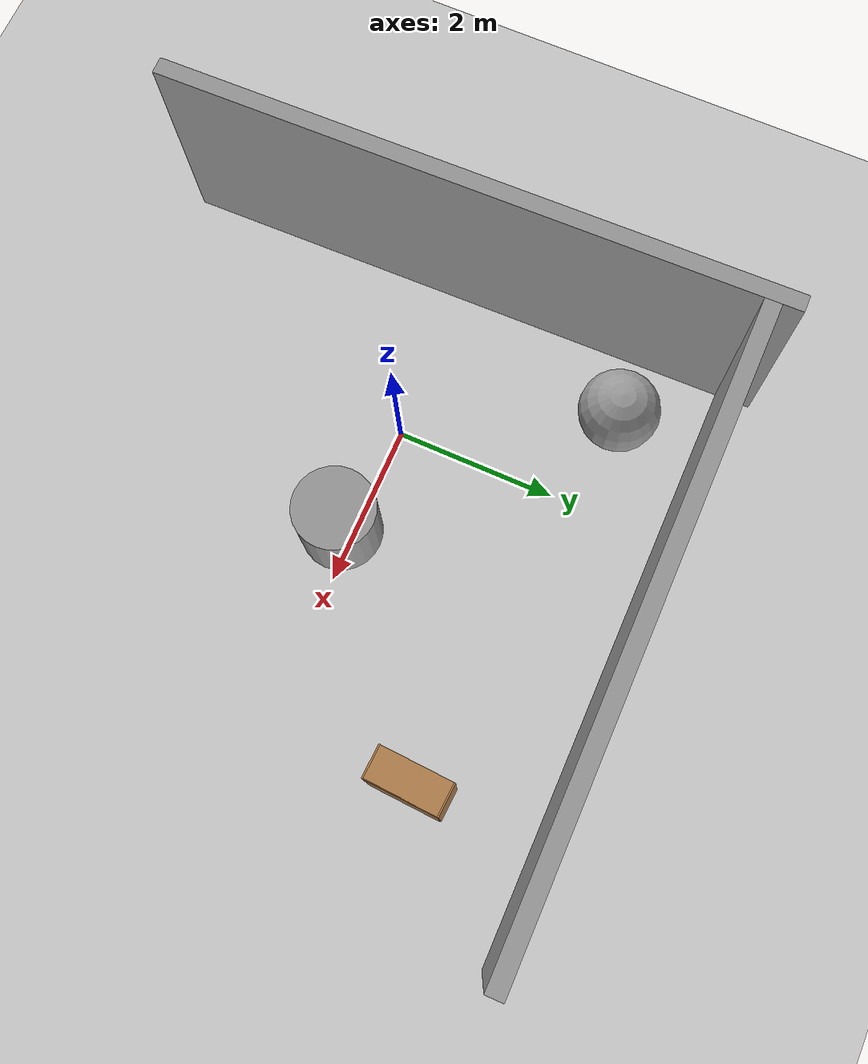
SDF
<sdf version="1.4">
 <world name="default">
  <light name="sun" type="directional">
   <pose>0 0 10 0 -0 0</pose>
   <diffuse>0.8 0.8 0.8 1</diffuse>
   <specular>0.2 0.2 0.2 1</specular>
   <attenuation>
    <range>1000</range>
    <constant>0.9</constant>
    <linear>0.01</linear>
    <quadratic>0.001</quadratic>
   </attenuation>
   <direction>-0.5 0.1 -0.9</direction>
  </light>
  <model name="ground_plane">
   <static>1</static>
   <link name="link">
    <collision name="collision">
     <geometry><plane><normal>0 0 1</normal><size>100 100</size></plane></geometry>
     <surface><friction><ode><mu>100</mu><mu2>50</mu2></ode></friction></surface>
    </collision>
    <visual name="visual">
     <cast_shadows>0</cast_shadows>
     <geometry><plane><normal>0 0 1</normal><size>100 100</size></plane></geometry>
     <material>
      <script><uri>file://media/materials/scripts/gazebo.material</uri><name>Gazebo/Grey</name></script>
     </material>
    </visual>
    <velocity_decay><linear>0</linear><angular>0</angular></velocity_decay>
   </link>
  </model>
  <physics type="ode">
   <max_step_size>0.001</max_step_size>
   <real_time_factor>1</real_time_factor>
   <real_time_update_rate>1000</real_time_update_rate>
   <gravity>0 0 -9.8</gravity>
  </physics>
  <scene><ambient>0.4 0.4 0.4 1</ambient><background>0.7 0.7 0.7 1</background><shadows>1</shadows></scene>
  <spherical_coordinates>
   <surface_model>EARTH_WGS84</surface_model>
   <latitude_deg>0</latitude_deg>
   <longitude_deg>0</longitude_deg>
   <elevation>0</elevation>
   <heading_deg>0</heading_deg>
  </spherical_coordinates>
  <model name="grey_wall">
   <static>1</static>
   <link name="link">
    <pose>0 0 1.4 0 -0 0</pose>
    <collision name="collision"><geometry><box><size>7.5 0.2 2.8</size></box></geometry></collision>
    <visual name="visual">
     <cast_shadows>0</cast_shadows>
     <geometry><box><size>7.5 0.2 2.8</size></box></geometry>
     <material>
      <script>
       <uri>model://grey_wall/materials/scripts</uri>
       <uri>model://grey_wall/materials/textures</uri>
       <name>vrc/grey_wall</name>
      </script>
     </material>
    </visual>
    <velocity_decay><linear>0</linear><angular>0</angular></velocity_decay>
   </link>
   <pose>1.60773 3.48384 0 0 -0 0</pose>
  </model>
  <model name="grey_wall_0">
   <static>1</static>
   <link name="link">
    <pose>0 0 1.4 0 -0 0</pose>
    <collision name="collision"><geometry><box><size>7.5 0.2 2.8</size></box></geometry></collision>
    <visual name="visual">
     <cast_shadows>0</cast_shadows>
     <geometry><box><size>7.5 0.2 2.8</size></box></geometry>
     <material>
      <script>
       <uri>model://grey_wall/materials/scripts</uri>
       <uri>model://grey_wall/materials/textures</uri>
       <name>vrc/grey_wall</name>
      </script>
     </material>
    </visual>
    <velocity_decay><linear>0</linear><angular>0</angular></velocity_decay>
   </link>
   <pose>-2.07333 0.068505 0 0 -0 1.58773</pose>
  </model>
  <model name="bookshelf">
   <static>1</static>
   <link name="link">
    <inertial><mass>1</mass></inertial>
    <collision name="back">
     <pose>0 0.005 0.6 0 -0 0</pose>
     <geometry><box><size>0.9 0.01 1.2</size></box></geometry>
    </collision>
    <visual name="visual1">
     <pose>0 0.005 0.6 0 -0 0</pose>
     <geometry><box><size>0.9 0.01 1.2</size></box></geometry>
     <material>
      <script><uri>file://media/materials/scripts/gazebo.material</uri><name>Gazebo/Wood</name></script>
     </material>
    </visual>
    <collision name="left_side">
     <pose>0.45 -0.195 0.6 0 -0 0</pose>
     <geometry><box><size>0.02 0.4 1.2</size></box></geometry>
    </collision>
    <visual name="visual2">
     <pose>0.45 -0.195 0.6 0 -0 0</pose>
     <geometry><box><size>0.02 0.4 1.2</size></box></geometry>
     <material>
      <script><uri>file://media/materials/scripts/gazebo.material</uri><name>Gazebo/Wood</name></script>
     </material>
    </visual>
    <collision name="right_side">
     <pose>-0.45 -0.195 0.6 0 -0 0</pose>
     <geometry><box><size>0.02 0.4 1.2</size></box></geometry>
    </collision>
    <visual name="visual3">
     <pose>-0.45 -0.195 0.6 0 -0 0</pose>
     <geometry><box><size>0.02 0.4 1.2</size></box></geometry>
     <material>
      <script><uri>file://media/materials/scripts/gazebo.material</uri><name>Gazebo/Wood</name></script>
     </material>
    </visual>
    <collision name="bottom">
     <pose>0 -0.195 0.03 0 -0 0</pose>
     <geometry><box><size>0.88 0.4 0.06</size></box></geometry>
    </collision>
    <visual name="visual4">
     <pose>0 -0.195 0.03 0 -0 0</pose>
     <geometry><box><size>0.88 0.4 0.06</size></box></geometry>
     <material>
      <script><uri>file://media/materials/scripts/gazebo.material</uri><name>Gazebo/Wood</name></script>
     </material>
    </visual>
    <collision name="top">
     <pose>0 -0.195 1.19 0 -0 0</pose>
     <geometry><box><size>0.88 0.4 0.02</size></box></geometry>
    </collision>
    <visual name="visual5">
     <pose>0 -0.195 1.19 0 -0 0</pose>
     <geometry><box><size>0.88 0.4 0.02</size></box></geometry>
     <material>
      <script><uri>file://media/materials/scripts/gazebo.material</uri><name>Gazebo/Wood</name></script>
     </material>
    </visual>
    <collision name="low_shelf">
     <pose>0 -0.195 0.43 0 -0 0</pose>
     <geometry><box><size>0.88 0.4 0.02</size></box></geometry>
    </collision>
    <visual name="visual6">
     <pose>0 -0.195 0.43 0 -0 0</pose>
     <geometry><box><size>0.88 0.4 0.02</size></box></geometry>
     <material>
      <script><uri>file://media/materials/scripts/gazebo.material</uri><name>Gazebo/Wood</name></script>
     </material>
    </visual>
    <collision name="high_shelf">
     <pose>0 -0.195 0.8 0 -0 0</pose>
     <geometry><box><size>0.88 0.4 0.02</size></box></geometry>
    </collision>
    <visual name="visual7">
     <pose>0 -0.195 0.8 0 -0 0</pose>
     <geometry><box><size>0.88 0.4 0.02</size></box></geometry>
     <material>
      <script><uri>file://media/materials/scripts/gazebo.material</uri><name>Gazebo/Wood</name></script>
     </material>
    </visual>
    <velocity_decay><linear>0</linear><angular>0</angular></velocity_decay>
   </link>
   <pose>4.04609 1.87568 0 0 0 -1.62878</pose>
  </model>
  <model name="unit_sphere_1">
   <pose>-1.16903 2.3772 0.5 0.00624 -0.014194 2.6e-05</pose>
   <link name="link">
    <inertial>
     <mass>1</mass>
     <inertia><ixx>1</ixx><ixy>0</ixy><ixz>0</ixz><iyy>1</iyy><iyz>0</iyz><izz>1</izz></inertia>
    </inertial>
    <collision name="collision"><geometry><sphere><radius>0.5</radius></sphere></geometry></collision>
    <visual name="visual">
     <geometry><sphere><radius>0.5</radius></sphere></geometry>
     <material>
      <script><uri>file://media/materials/scripts/gazebo.material</uri><name>Gazebo/Grey</name></script>
     </material>
    </visual>
    <velocity_decay><linear>0</linear><angular>0</angular></velocity_decay>
   </link>
   <static>0</static>
  </model>
  <model name="unit_cylinder_1">
   <pose>1.40413 -0.153768 0.499998 0 -0 0</pose>
   <link name="link">
    <inertial>
     <mass>1</mass>
     <inertia><ixx>1</ixx><ixy>0</ixy><ixz>0</ixz><iyy>1</iyy><iyz>0</iyz><izz>1</izz></inertia>
    </inertial>
    <collision name="collision">
     <geometry><cylinder><radius>0.5</radius><length>1</length></cylinder></geometry>
    </collision>
    <visual name="visual">
     <geometry><cylinder><radius>0.5</radius><length>1</length></cylinder></geometry>
     <material>
      <script><uri>file://media/materials/scripts/gazebo.material</uri><name>Gazebo/Grey</name></script>
     </material>
    </visual>
    <velocity_decay><linear>0</linear><angular>0</angular></velocity_decay>
   </link>
   <static>0</static>
  </model>
 </world>
</sdf>
